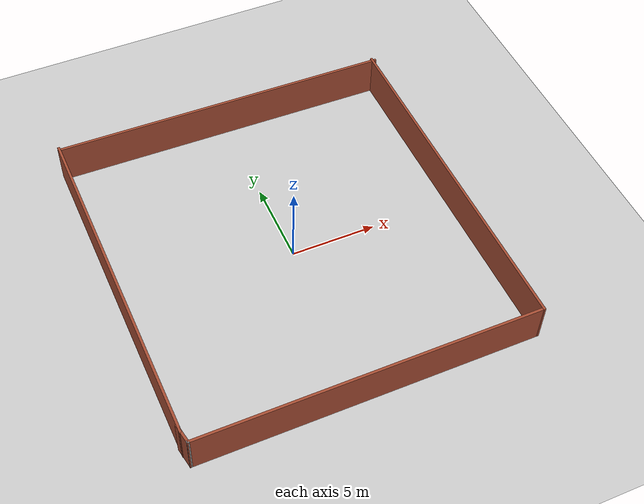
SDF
<sdf version="1.7">
 <world name="my_warehouse">
  <light name="sun" type="directional">
   <pose>0 0 10 0 -0 0</pose>
   <diffuse>0.8 0.8 0.8 1</diffuse>
   <specular>0.2 0.2 0.2 1</specular>
   <attenuation>
    <range>1000</range>
    <constant>0.9</constant>
    <linear>0.01</linear>
    <quadratic>0.001</quadratic>
   </attenuation>
   <direction>-0.5 0.1 -0.9</direction>
   <spot><inner_angle>0</inner_angle><outer_angle>0</outer_angle><falloff>0</falloff></spot>
  </light>
  <model name="ground_plane">
   <static>1</static>
   <link name="link">
    <collision name="collision">
     <geometry><plane><normal>0 0 1</normal><size>100 100</size></plane></geometry>
     <surface>
      <contact><collide_bitmask>65535</collide_bitmask></contact>
      <friction><ode><mu>100</mu><mu2>50</mu2></ode></friction>
     </surface>
    </collision>
    <visual name="visual">
     <cast_shadows>0</cast_shadows>
     <geometry><plane><normal>0 0 1</normal><size>100 100</size></plane></geometry>
     <material>
      <script><uri>file://media/materials/scripts/gazebo.material</uri><name>Gazebo/Grey</name></script>
     </material>
    </visual>
   </link>
  </model>
  <gravity>0 0 -9.8</gravity>
  <magnetic_field>6e-06 2.3e-05 -4.2e-05</magnetic_field>
  <atmosphere type="adiabatic"/>
  <physics type="ode">
   <max_step_size>0.001</max_step_size>
   <real_time_factor>1</real_time_factor>
   <real_time_update_rate>1000</real_time_update_rate>
  </physics>
  <scene><ambient>0.4 0.4 0.4 1</ambient><background>0.7 0.7 0.7 1</background><shadows>1</shadows></scene>
  <spherical_coordinates>
   <surface_model>EARTH_WGS84</surface_model>
   <latitude_deg>0</latitude_deg>
   <longitude_deg>0</longitude_deg>
   <elevation>0</elevation>
   <heading_deg>0</heading_deg>
  </spherical_coordinates>
  <model name="walls">
   <pose>-0.157444 0.239172 0 0 -0 0</pose>
   <link name="Wall_11">
    <collision name="Wall_11_Collision">
     <geometry><box><size>1.21855 0.15 2.5</size></box></geometry>
     <pose>0 0 1.25 0 -0 0</pose>
    </collision>
    <visual name="Wall_11_Visual">
     <pose>0 0 1.25 0 -0 0</pose>
     <geometry><box><size>1.21855 0.15 2.5</size></box></geometry>
     <material>
      <script><uri>file://media/materials/scripts/gazebo.material</uri><name>Gazebo/Bricks</name></script>
      <ambient>1 1 1 1</ambient>
     </material>
     <meta><layer>0</layer></meta>
    </visual>
    <pose>-9.95164 -9.99727 0 0 -0 -1.39509</pose>
   </link>
   <link name="Wall_2">
    <collision name="Wall_2_Collision">
     <geometry><box><size>20.839 0.15 2.5</size></box></geometry>
     <pose>0 0 1.25 0 -0 0</pose>
    </collision>
    <visual name="Wall_2_Visual">
     <pose>0 0 1.25 0 -0 0</pose>
     <geometry><box><size>20.839 0.15 2.5</size></box></geometry>
     <material>
      <script><uri>file://media/materials/scripts/gazebo.material</uri><name>Gazebo/Bricks</name></script>
      <ambient>1 1 1 1</ambient>
     </material>
     <meta><layer>0</layer></meta>
    </visual>
    <pose>9.97891 -0.178808 0 0 -0 1.57204</pose>
   </link>
   <link name="Wall_3">
    <collision name="Wall_3_Collision">
     <geometry><box><size>20.228 0.15 2.5</size></box></geometry>
     <pose>0 0 1.25 0 -0 0</pose>
    </collision>
    <visual name="Wall_3_Visual">
     <pose>0 0 1.25 0 -0 0</pose>
     <geometry><box><size>20.228 0.15 2.5</size></box></geometry>
     <material>
      <script><uri>file://media/materials/scripts/gazebo.material</uri><name>Gazebo/Bricks</name></script>
      <ambient>1 1 1 1</ambient>
     </material>
     <meta><layer>0</layer></meta>
    </visual>
    <pose>0.070276 10.2088 0 0 -0 3.12321</pose>
   </link>
   <link name="Wall_5">
    <collision name="Wall_5_Collision">
     <geometry><box><size>20.5307 0.15 2.5</size></box></geometry>
     <pose>0 0 1.25 0 -0 0</pose>
    </collision>
    <visual name="Wall_5_Visual">
     <pose>0 0 1.25 0 -0 0</pose>
     <geometry><box><size>20.5307 0.15 2.5</size></box></geometry>
     <material>
      <script><uri>file://media/materials/scripts/gazebo.material</uri><name>Gazebo/Bricks</name></script>
      <ambient>1 1 1 1</ambient>
     </material>
     <meta><layer>0</layer></meta>
    </visual>
    <pose>-10.0534 0.344649 0 0 -0 1.57621</pose>
   </link>
   <link name="Wall_7">
    <collision name="Wall_7_Collision">
     <geometry><box><size>20 0.15 2.5</size></box></geometry>
     <pose>0 0 1.25 0 -0 0</pose>
    </collision>
    <visual name="Wall_7_Visual">
     <pose>0 0 1.25 0 -0 0</pose>
     <geometry><box><size>20 0.15 2.5</size></box></geometry>
     <material>
      <script><uri>file://media/materials/scripts/gazebo.material</uri><name>Gazebo/Bricks</name></script>
      <ambient>1 1 1 1</ambient>
     </material>
     <meta><layer>0</layer></meta>
    </visual>
    <pose>0.066747 -10.5233 0 0 -0 3.14159</pose>
   </link>
   <link name="Wall_8">
    <collision name="Wall_8_Collision">
     <geometry><box><size>0.15 0.15 2.5</size></box></geometry>
     <pose>0 0 1.25 0 -0 0</pose>
    </collision>
    <visual name="Wall_8_Visual">
     <pose>0 0 1.25 0 -0 0</pose>
     <geometry><box><size>0.15 0.15 2.5</size></box></geometry>
     <material>
      <script><uri>file://media/materials/scripts/gazebo.material</uri><name>Gazebo/Grey</name></script>
      <ambient>1 1 1 1</ambient>
     </material>
     <meta><layer>0</layer></meta>
    </visual>
    <pose>-9.85825 -10.5233 0 0 -0 0</pose>
   </link>
   <static>1</static>
  </model>
 </world>
</sdf>
